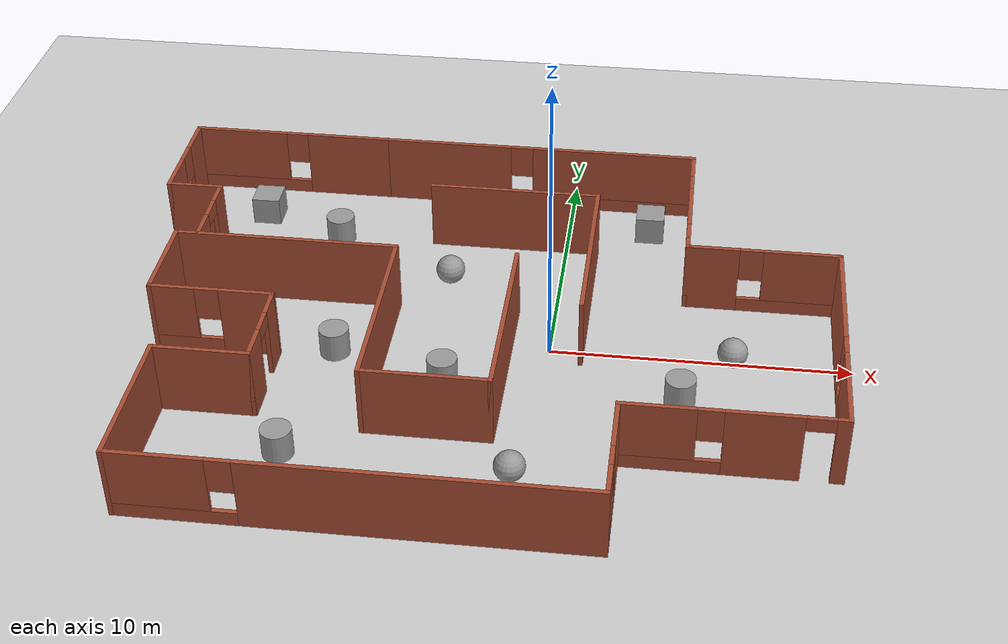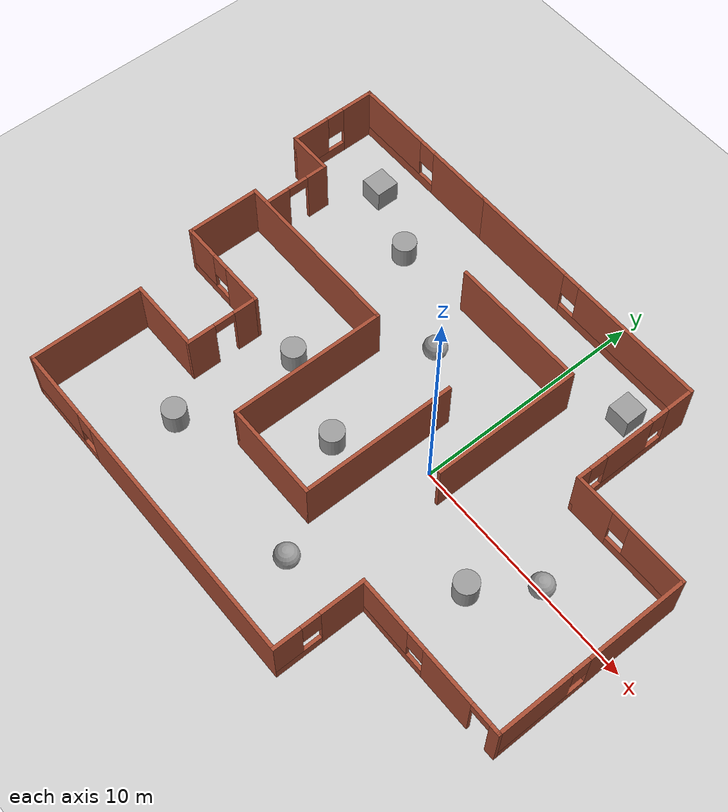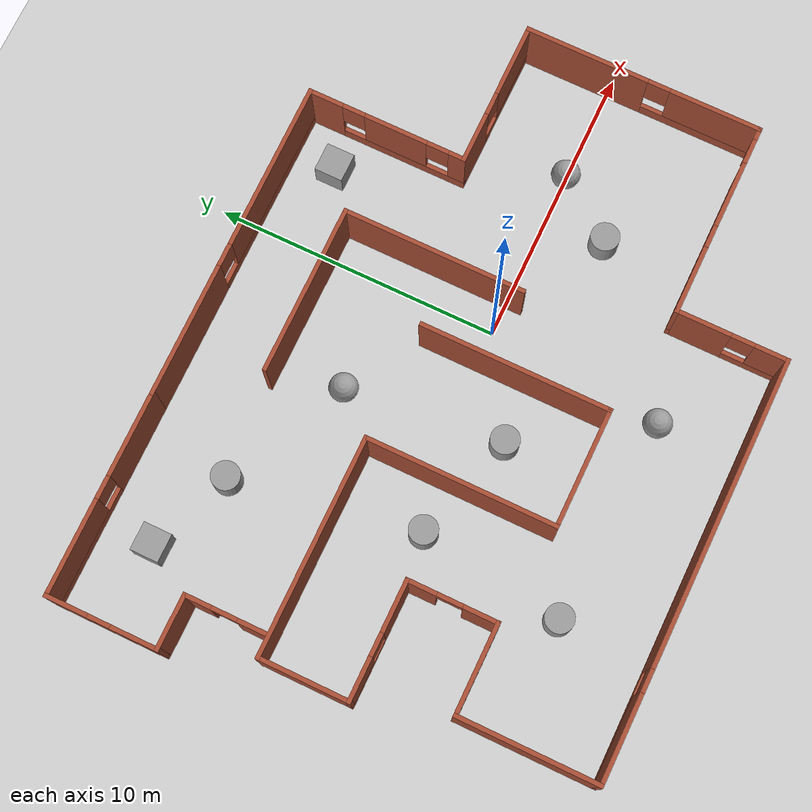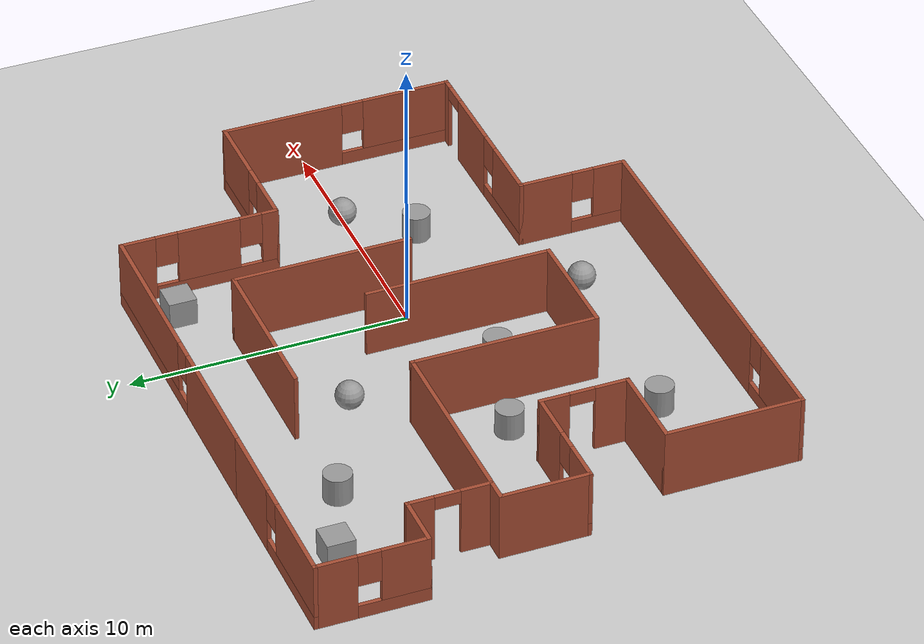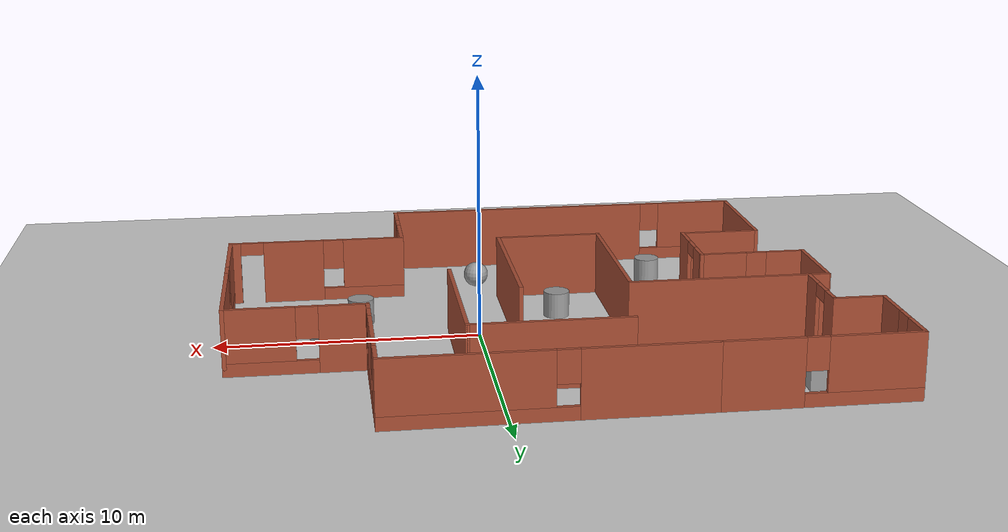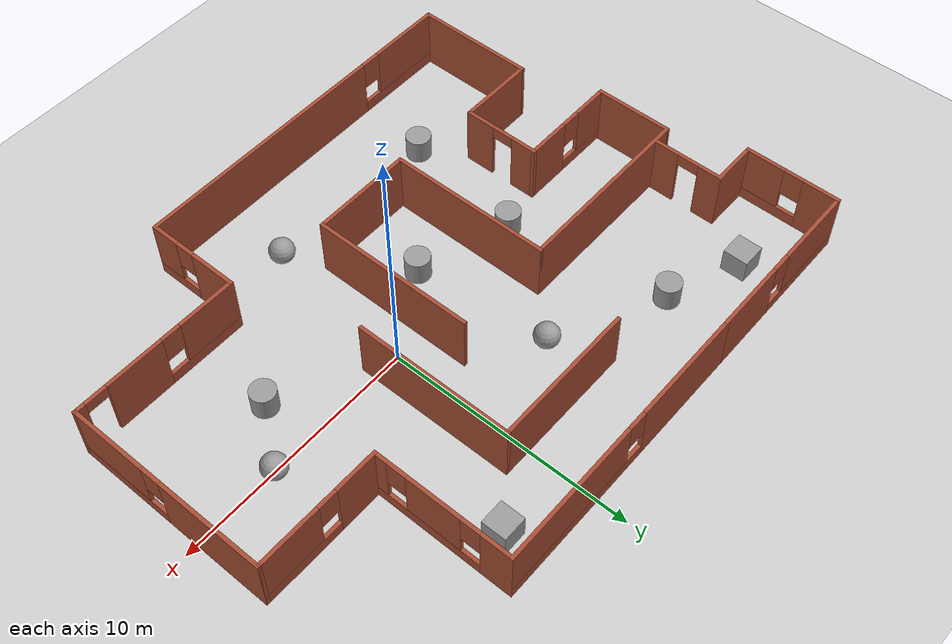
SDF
<sdf version="1.7">
 <world name="default">
  <light name="sun" type="directional">
   <pose>0 0 10 0 -0 0</pose>
   <diffuse>0.8 0.8 0.8 1</diffuse>
   <specular>0.2 0.2 0.2 1</specular>
   <attenuation>
    <range>1000</range>
    <constant>0.9</constant>
    <linear>0.01</linear>
    <quadratic>0.001</quadratic>
   </attenuation>
   <direction>-0.5 0.1 -0.9</direction>
   <spot><inner_angle>0</inner_angle><outer_angle>0</outer_angle><falloff>0</falloff></spot>
  </light>
  <model name="ground_plane">
   <static>1</static>
   <link name="link">
    <collision name="collision">
     <geometry><plane><normal>0 0 1</normal><size>100 100</size></plane></geometry>
     <surface>
      <contact><collide_bitmask>65535</collide_bitmask></contact>
      <friction><ode><mu>100</mu><mu2>50</mu2></ode></friction>
     </surface>
    </collision>
    <visual name="visual">
     <cast_shadows>0</cast_shadows>
     <geometry><plane><normal>0 0 1</normal><size>100 100</size></plane></geometry>
     <material>
      <script><uri>file://media/materials/scripts/gazebo.material</uri><name>Gazebo/Grey</name></script>
     </material>
    </visual>
   </link>
  </model>
  <gravity>0 0 -9.8</gravity>
  <magnetic_field>6e-06 2.3e-05 -4.2e-05</magnetic_field>
  <atmosphere type="adiabatic"/>
  <physics type="ode">
   <max_step_size>0.001</max_step_size>
   <real_time_factor>1</real_time_factor>
   <real_time_update_rate>1000</real_time_update_rate>
  </physics>
  <scene><ambient>0.4 0.4 0.4 1</ambient><background>0.7 0.7 0.7 1</background><shadows>1</shadows></scene>
  <audio><device>default</device></audio>
  <spherical_coordinates>
   <surface_model>EARTH_WGS84</surface_model>
   <latitude_deg>0</latitude_deg>
   <longitude_deg>0</longitude_deg>
   <elevation>0</elevation>
   <heading_deg>0</heading_deg>
  </spherical_coordinates>
  <model name="home">
   <pose>-2.33839 -0.196843 0 0 -0 0</pose>
   <link name="Wall_1">
    <pose>0.999999 8.9 0 0 -0 0</pose>
    <visual name="Wall_1_Visual_0">
     <pose>-3.37522 0 1.25 0 -0 0</pose>
     <geometry><box><size>4.74956 0.15 2.5</size></box></geometry>
     <material>
      <script><uri>file://media/materials/scripts/gazebo.material</uri><name>Gazebo/Bricks</name></script>
      <ambient>1 1 1 1</ambient>
     </material>
     <meta><layer>0</layer></meta>
    </visual>
    <collision name="Wall_1_Collision_0">
     <geometry><box><size>4.74956 0.15 2.5</size></box></geometry>
     <pose>-3.37522 0 1.25 0 -0 0</pose>
    </collision>
    <visual name="Wall_1_Visual_1">
     <pose>2.37478 0 0.25 0 -0 0</pose>
     <geometry><box><size>6.75044 0.15 0.5</size></box></geometry>
     <material>
      <script><uri>file://media/materials/scripts/gazebo.material</uri><name>Gazebo/Bricks</name></script>
      <ambient>1 1 1 1</ambient>
     </material>
     <meta><layer>0</layer></meta>
    </visual>
    <collision name="Wall_1_Collision_1">
     <geometry><box><size>6.75044 0.15 0.5</size></box></geometry>
     <pose>2.37478 0 0.25 0 -0 0</pose>
    </collision>
    <visual name="Wall_1_Visual_2">
     <pose>2.77478 0 1.5 0 -0 0</pose>
     <geometry><box><size>5.95043 0.15 2</size></box></geometry>
     <material>
      <script><uri>file://media/materials/scripts/gazebo.material</uri><name>Gazebo/Bricks</name></script>
      <ambient>1 1 1 1</ambient>
     </material>
     <meta><layer>0</layer></meta>
    </visual>
    <collision name="Wall_1_Collision_2">
     <geometry><box><size>5.95043 0.15 2</size></box></geometry>
     <pose>2.77478 0 1.5 0 -0 0</pose>
    </collision>
    <visual name="Wall_1_Visual_3">
     <pose>-0.600435 0 1.9 0 -0 0</pose>
     <geometry><box><size>0.8 0.15 1.2</size></box></geometry>
     <material>
      <script><uri>file://media/materials/scripts/gazebo.material</uri><name>Gazebo/Bricks</name></script>
      <ambient>1 1 1 1</ambient>
     </material>
     <meta><layer>0</layer></meta>
    </visual>
    <collision name="Wall_1_Collision_3">
     <geometry><box><size>0.8 0.15 1.2</size></box></geometry>
     <pose>-0.600435 0 1.9 0 -0 0</pose>
    </collision>
   </link>
   <link name="Wall_10">
    <pose>-6.575 -2.5 0 0 -0 1.5708</pose>
    <visual name="Wall_10_Visual_0">
     <pose>-0.996457 0 1.25 0 -0 0</pose>
     <geometry><box><size>1.25709 0.15 2.5</size></box></geometry>
     <material>
      <script><uri>file://media/materials/scripts/gazebo.material</uri><name>Gazebo/Bricks</name></script>
      <ambient>1 1 1 1</ambient>
     </material>
     <meta><layer>0</layer></meta>
    </visual>
    <collision name="Wall_10_Collision_0">
     <geometry><box><size>1.25709 0.15 2.5</size></box></geometry>
     <pose>-0.996457 0 1.25 0 -0 0</pose>
    </collision>
    <visual name="Wall_10_Visual_1">
     <pose>1.07854 0 1.25 0 -0 0</pose>
     <geometry><box><size>1.09291 0.15 2.5</size></box></geometry>
     <material>
      <script><uri>file://media/materials/scripts/gazebo.material</uri><name>Gazebo/Bricks</name></script>
      <ambient>1 1 1 1</ambient>
     </material>
     <meta><layer>0</layer></meta>
    </visual>
    <collision name="Wall_10_Collision_1">
     <geometry><box><size>1.09291 0.15 2.5</size></box></geometry>
     <pose>1.07854 0 1.25 0 -0 0</pose>
    </collision>
    <visual name="Wall_10_Visual_2">
     <pose>0.082087 0 2.25 0 -0 0</pose>
     <geometry><box><size>0.9 0.15 0.5</size></box></geometry>
     <material>
      <script><uri>file://media/materials/scripts/gazebo.material</uri><name>Gazebo/Bricks</name></script>
      <ambient>1 1 1 1</ambient>
     </material>
     <meta><layer>0</layer></meta>
    </visual>
    <collision name="Wall_10_Collision_2">
     <geometry><box><size>0.9 0.15 0.5</size></box></geometry>
     <pose>0.082087 0 2.25 0 -0 0</pose>
    </collision>
   </link>
   <link name="Wall_11">
    <pose>-8.625 -0.95 0 0 -0 3.14159</pose>
    <visual name="Wall_11_Visual_0">
     <pose>-1.19003 0 1.25 0 -0 0</pose>
     <geometry><box><size>1.86995 0.15 2.5</size></box></geometry>
     <material>
      <script><uri>file://media/materials/scripts/gazebo.material</uri><name>Gazebo/Bricks</name></script>
      <ambient>1 1 1 1</ambient>
     </material>
     <meta><layer>0</layer></meta>
    </visual>
    <collision name="Wall_11_Collision_0">
     <geometry><box><size>1.86995 0.15 2.5</size></box></geometry>
     <pose>-1.19003 0 1.25 0 -0 0</pose>
    </collision>
    <visual name="Wall_11_Visual_1">
     <pose>0.934974 0 0.25 0 -0 0</pose>
     <geometry><box><size>2.38005 0.15 0.5</size></box></geometry>
     <material>
      <script><uri>file://media/materials/scripts/gazebo.material</uri><name>Gazebo/Bricks</name></script>
      <ambient>1 1 1 1</ambient>
     </material>
     <meta><layer>0</layer></meta>
    </visual>
    <collision name="Wall_11_Collision_1">
     <geometry><box><size>2.38005 0.15 0.5</size></box></geometry>
     <pose>0.934974 0 0.25 0 -0 0</pose>
    </collision>
    <visual name="Wall_11_Visual_2">
     <pose>1.33497 0 1.5 0 -0 0</pose>
     <geometry><box><size>1.58005 0.15 2</size></box></geometry>
     <material>
      <script><uri>file://media/materials/scripts/gazebo.material</uri><name>Gazebo/Bricks</name></script>
      <ambient>1 1 1 1</ambient>
     </material>
     <meta><layer>0</layer></meta>
    </visual>
    <collision name="Wall_11_Collision_2">
     <geometry><box><size>1.58005 0.15 2</size></box></geometry>
     <pose>1.33497 0 1.5 0 -0 0</pose>
    </collision>
    <visual name="Wall_11_Visual_3">
     <pose>0.144947 0 1.9 0 -0 0</pose>
     <geometry><box><size>0.8 0.15 1.2</size></box></geometry>
     <material>
      <script><uri>file://media/materials/scripts/gazebo.material</uri><name>Gazebo/Bricks</name></script>
      <ambient>1 1 1 1</ambient>
     </material>
     <meta><layer>0</layer></meta>
    </visual>
    <collision name="Wall_11_Collision_3">
     <geometry><box><size>0.8 0.15 1.2</size></box></geometry>
     <pose>0.144947 0 1.9 0 -0 0</pose>
    </collision>
   </link>
   <link name="Wall_12">
    <collision name="Wall_12_Collision">
     <geometry><box><size>3.25 0.15 2.5</size></box></geometry>
     <pose>0 0 1.25 0 -0 0</pose>
    </collision>
    <visual name="Wall_12_Visual">
     <pose>0 0 1.25 0 -0 0</pose>
     <geometry><box><size>3.25 0.15 2.5</size></box></geometry>
     <material>
      <script><uri>file://media/materials/scripts/gazebo.material</uri><name>Gazebo/Bricks</name></script>
      <ambient>1 1 1 1</ambient>
     </material>
     <meta><layer>0</layer></meta>
    </visual>
    <pose>-10.675 0.6 0 0 -0 1.5708</pose>
   </link>
   <link name="Wall_13">
    <collision name="Wall_13_Collision">
     <geometry><box><size>7.75 0.15 2.5</size></box></geometry>
     <pose>0 0 1.25 0 -0 0</pose>
    </collision>
    <visual name="Wall_13_Visual">
     <pose>0 0 1.25 0 -0 0</pose>
     <geometry><box><size>7.75 0.15 2.5</size></box></geometry>
     <material>
      <script><uri>file://media/materials/scripts/gazebo.material</uri><name>Gazebo/Bricks</name></script>
      <ambient>1 1 1 1</ambient>
     </material>
     <meta><layer>0</layer></meta>
    </visual>
    <pose>-6.875 2.15 0 0 -0 0</pose>
   </link>
   <link name="Wall_14">
    <collision name="Wall_14_Collision">
     <geometry><box><size>6.75 0.15 2.5</size></box></geometry>
     <pose>0 0 1.25 0 -0 0</pose>
    </collision>
    <visual name="Wall_14_Visual">
     <pose>0 0 1.25 0 -0 0</pose>
     <geometry><box><size>6.75 0.15 2.5</size></box></geometry>
     <material>
      <script><uri>file://media/materials/scripts/gazebo.material</uri><name>Gazebo/Bricks</name></script>
      <ambient>1 1 1 1</ambient>
     </material>
     <meta><layer>0</layer></meta>
    </visual>
    <pose>-3.075 -1.15 0 0 -0 -1.5708</pose>
   </link>
   <link name="Wall_15">
    <collision name="Wall_15_Collision">
     <geometry><box><size>4.25 0.15 2.5</size></box></geometry>
     <pose>0 0 1.25 0 -0 0</pose>
    </collision>
    <visual name="Wall_15_Visual">
     <pose>0 0 1.25 0 -0 0</pose>
     <geometry><box><size>4.25 0.15 2.5</size></box></geometry>
     <material>
      <script><uri>file://media/materials/scripts/gazebo.material</uri><name>Gazebo/Bricks</name></script>
      <ambient>1 1 1 1</ambient>
     </material>
     <meta><layer>0</layer></meta>
    </visual>
    <pose>-1.025 -4.45 0 0 -0 0</pose>
   </link>
   <link name="Wall_16">
    <collision name="Wall_16_Collision">
     <geometry><box><size>6.75 0.15 2.5</size></box></geometry>
     <pose>0 0 1.25 0 -0 0</pose>
    </collision>
    <visual name="Wall_16_Visual">
     <pose>0 0 1.25 0 -0 0</pose>
     <geometry><box><size>6.75 0.15 2.5</size></box></geometry>
     <material>
      <script><uri>file://media/materials/scripts/gazebo.material</uri><name>Gazebo/Bricks</name></script>
      <ambient>1 1 1 1</ambient>
     </material>
     <meta><layer>0</layer></meta>
    </visual>
    <pose>1.025 -1.15 0 0 -0 1.5708</pose>
   </link>
   <link name="Wall_18">
    <pose>-8.225 8.9 0 0 -0 3.14159</pose>
    <visual name="Wall_18_Visual_0">
     <pose>-2.11012 0 1.25 0 -0 0</pose>
     <geometry><box><size>3.02975 0.15 2.5</size></box></geometry>
     <material>
      <script><uri>file://media/materials/scripts/gazebo.material</uri><name>Gazebo/Bricks</name></script>
      <ambient>1 1 1 1</ambient>
     </material>
     <meta><layer>0</layer></meta>
    </visual>
    <collision name="Wall_18_Collision_0">
     <geometry><box><size>3.02975 0.15 2.5</size></box></geometry>
     <pose>-2.11012 0 1.25 0 -0 0</pose>
    </collision>
    <visual name="Wall_18_Visual_1">
     <pose>1.51488 0 0.25 0 -0 0</pose>
     <geometry><box><size>4.22025 0.15 0.5</size></box></geometry>
     <material>
      <script><uri>file://media/materials/scripts/gazebo.material</uri><name>Gazebo/Bricks</name></script>
      <ambient>1 1 1 1</ambient>
     </material>
     <meta><layer>0</layer></meta>
    </visual>
    <collision name="Wall_18_Collision_1">
     <geometry><box><size>4.22025 0.15 0.5</size></box></geometry>
     <pose>1.51488 0 0.25 0 -0 0</pose>
    </collision>
    <visual name="Wall_18_Visual_2">
     <pose>1.91488 0 1.5 0 -0 0</pose>
     <geometry><box><size>3.42025 0.15 2</size></box></geometry>
     <material>
      <script><uri>file://media/materials/scripts/gazebo.material</uri><name>Gazebo/Bricks</name></script>
      <ambient>1 1 1 1</ambient>
     </material>
     <meta><layer>0</layer></meta>
    </visual>
    <collision name="Wall_18_Collision_2">
     <geometry><box><size>3.42025 0.15 2</size></box></geometry>
     <pose>1.91488 0 1.5 0 -0 0</pose>
    </collision>
    <visual name="Wall_18_Visual_3">
     <pose>-0.195246 0 1.9 0 -0 0</pose>
     <geometry><box><size>0.8 0.15 1.2</size></box></geometry>
     <material>
      <script><uri>file://media/materials/scripts/gazebo.material</uri><name>Gazebo/Bricks</name></script>
      <ambient>1 1 1 1</ambient>
     </material>
     <meta><layer>0</layer></meta>
    </visual>
    <collision name="Wall_18_Collision_3">
     <geometry><box><size>0.8 0.15 1.2</size></box></geometry>
     <pose>-0.195246 0 1.9 0 -0 0</pose>
    </collision>
   </link>
   <link name="Wall_19">
    <pose>-11.775 6.975 0 0 -0 -1.5708</pose>
    <visual name="Wall_19_Visual_0">
     <pose>-1.24753 0 1.25 0 -0 0</pose>
     <geometry><box><size>1.50494 0.15 2.5</size></box></geometry>
     <material>
      <script><uri>file://media/materials/scripts/gazebo.material</uri><name>Gazebo/Bricks</name></script>
      <ambient>1 1 1 1</ambient>
     </material>
     <meta><layer>0</layer></meta>
    </visual>
    <collision name="Wall_19_Collision_0">
     <geometry><box><size>1.50494 0.15 2.5</size></box></geometry>
     <pose>-1.24753 0 1.25 0 -0 0</pose>
    </collision>
    <visual name="Wall_19_Visual_1">
     <pose>0.752471 0 0.25 0 -0 0</pose>
     <geometry><box><size>2.49506 0.15 0.5</size></box></geometry>
     <material>
      <script><uri>file://media/materials/scripts/gazebo.material</uri><name>Gazebo/Bricks</name></script>
      <ambient>1 1 1 1</ambient>
     </material>
     <meta><layer>0</layer></meta>
    </visual>
    <collision name="Wall_19_Collision_1">
     <geometry><box><size>2.49506 0.15 0.5</size></box></geometry>
     <pose>0.752471 0 0.25 0 -0 0</pose>
    </collision>
    <visual name="Wall_19_Visual_2">
     <pose>1.15247 0 1.5 0 -0 0</pose>
     <geometry><box><size>1.69506 0.15 2</size></box></geometry>
     <material>
      <script><uri>file://media/materials/scripts/gazebo.material</uri><name>Gazebo/Bricks</name></script>
      <ambient>1 1 1 1</ambient>
     </material>
     <meta><layer>0</layer></meta>
    </visual>
    <collision name="Wall_19_Collision_2">
     <geometry><box><size>1.69506 0.15 2</size></box></geometry>
     <pose>1.15247 0 1.5 0 -0 0</pose>
    </collision>
    <visual name="Wall_19_Visual_3">
     <pose>-0.095057 0 1.9 0 -0 0</pose>
     <geometry><box><size>0.8 0.15 1.2</size></box></geometry>
     <material>
      <script><uri>file://media/materials/scripts/gazebo.material</uri><name>Gazebo/Bricks</name></script>
      <ambient>1 1 1 1</ambient>
     </material>
     <meta><layer>0</layer></meta>
    </visual>
    <collision name="Wall_19_Collision_3">
     <geometry><box><size>0.8 0.15 1.2</size></box></geometry>
     <pose>-0.095057 0 1.9 0 -0 0</pose>
    </collision>
   </link>
   <link name="Wall_2">
    <pose>6.675 6.1 0 0 -0 -1.5708</pose>
    <visual name="Wall_2_Visual_0">
     <pose>-2.23321 0 1.25 0 -0 0</pose>
     <geometry><box><size>1.28357 0.15 2.5</size></box></geometry>
     <material>
      <script><uri>file://media/materials/scripts/gazebo.material</uri><name>Gazebo/Bricks</name></script>
      <ambient>1 1 1 1</ambient>
     </material>
     <meta><layer>0</layer></meta>
    </visual>
    <collision name="Wall_2_Collision_0">
     <geometry><box><size>1.28357 0.15 2.5</size></box></geometry>
     <pose>-2.23321 0 1.25 0 -0 0</pose>
    </collision>
    <visual name="Wall_2_Visual_1">
     <pose>0.641787 0 0.25 0 -0 0</pose>
     <geometry><box><size>4.46643 0.15 0.5</size></box></geometry>
     <material>
      <script><uri>file://media/materials/scripts/gazebo.material</uri><name>Gazebo/Bricks</name></script>
      <ambient>1 1 1 1</ambient>
     </material>
     <meta><layer>0</layer></meta>
    </visual>
    <collision name="Wall_2_Collision_1">
     <geometry><box><size>4.46643 0.15 0.5</size></box></geometry>
     <pose>0.641787 0 0.25 0 -0 0</pose>
    </collision>
    <visual name="Wall_2_Visual_2">
     <pose>0.3344 0 1.5 0 -0 0</pose>
     <geometry><box><size>2.25165 0.15 2</size></box></geometry>
     <material>
      <script><uri>file://media/materials/scripts/gazebo.material</uri><name>Gazebo/Bricks</name></script>
      <ambient>1 1 1 1</ambient>
     </material>
     <meta><layer>0</layer></meta>
    </visual>
    <collision name="Wall_2_Collision_2">
     <geometry><box><size>2.25165 0.15 2</size></box></geometry>
     <pose>0.3344 0 1.5 0 -0 0</pose>
    </collision>
    <visual name="Wall_2_Visual_3">
     <pose>2.56761 0 1.5 0 -0 0</pose>
     <geometry><box><size>0.614775 0.15 2</size></box></geometry>
     <material>
      <script><uri>file://media/materials/scripts/gazebo.material</uri><name>Gazebo/Bricks</name></script>
      <ambient>1 1 1 1</ambient>
     </material>
     <meta><layer>0</layer></meta>
    </visual>
    <collision name="Wall_2_Collision_3">
     <geometry><box><size>0.614775 0.15 2</size></box></geometry>
     <pose>2.56761 0 1.5 0 -0 0</pose>
    </collision>
    <visual name="Wall_2_Visual_4">
     <pose>-1.19143 0 1.9 0 -0 0</pose>
     <geometry><box><size>0.8 0.15 1.2</size></box></geometry>
     <material>
      <script><uri>file://media/materials/scripts/gazebo.material</uri><name>Gazebo/Bricks</name></script>
      <ambient>1 1 1 1</ambient>
     </material>
     <meta><layer>0</layer></meta>
    </visual>
    <collision name="Wall_2_Collision_4">
     <geometry><box><size>0.8 0.15 1.2</size></box></geometry>
     <pose>-1.19143 0 1.9 0 -0 0</pose>
    </collision>
    <visual name="Wall_2_Visual_5">
     <pose>1.86023 0 1.9 0 -0 0</pose>
     <geometry><box><size>0.8 0.15 1.2</size></box></geometry>
     <material>
      <script><uri>file://media/materials/scripts/gazebo.material</uri><name>Gazebo/Bricks</name></script>
      <ambient>1 1 1 1</ambient>
     </material>
     <meta><layer>0</layer></meta>
    </visual>
    <collision name="Wall_2_Collision_5">
     <geometry><box><size>0.8 0.15 1.2</size></box></geometry>
     <pose>1.86023 0 1.9 0 -0 0</pose>
    </collision>
   </link>
   <link name="Wall_20">
    <collision name="Wall_20_Collision">
     <geometry><box><size>2 0.15 2.5</size></box></geometry>
     <pose>0 0 1.25 0 -0 0</pose>
    </collision>
    <visual name="Wall_20_Visual">
     <pose>0 0 1.25 0 -0 0</pose>
     <geometry><box><size>2 0.15 2.5</size></box></geometry>
     <material>
      <script><uri>file://media/materials/scripts/gazebo.material</uri><name>Gazebo/Bricks</name></script>
      <ambient>1 1 1 1</ambient>
     </material>
     <meta><layer>0</layer></meta>
    </visual>
    <pose>-10.85 5.05 0 0 -0 0</pose>
   </link>
   <link name="Wall_21">
    <pose>-9.925 3.625 0 0 -0 -1.5708</pose>
    <visual name="Wall_21_Visual_0">
     <pose>-1.00551 0 1.25 0 -0 0</pose>
     <geometry><box><size>0.988976 0.15 2.5</size></box></geometry>
     <material>
      <script><uri>file://media/materials/scripts/gazebo.material</uri><name>Gazebo/Bricks</name></script>
      <ambient>1 1 1 1</ambient>
     </material>
     <meta><layer>0</layer></meta>
    </visual>
    <collision name="Wall_21_Collision_0">
     <geometry><box><size>0.988976 0.15 2.5</size></box></geometry>
     <pose>-1.00551 0 1.25 0 -0 0</pose>
    </collision>
    <visual name="Wall_21_Visual_1">
     <pose>0.944488 0 1.25 0 -0 0</pose>
     <geometry><box><size>1.11102 0.15 2.5</size></box></geometry>
     <material>
      <script><uri>file://media/materials/scripts/gazebo.material</uri><name>Gazebo/Bricks</name></script>
      <ambient>1 1 1 1</ambient>
     </material>
     <meta><layer>0</layer></meta>
    </visual>
    <collision name="Wall_21_Collision_1">
     <geometry><box><size>1.11102 0.15 2.5</size></box></geometry>
     <pose>0.944488 0 1.25 0 -0 0</pose>
    </collision>
    <visual name="Wall_21_Visual_2">
     <pose>-0.061024 0 2.25 0 -0 0</pose>
     <geometry><box><size>0.9 0.15 0.5</size></box></geometry>
     <material>
      <script><uri>file://media/materials/scripts/gazebo.material</uri><name>Gazebo/Bricks</name></script>
      <ambient>1 1 1 1</ambient>
     </material>
     <meta><layer>0</layer></meta>
    </visual>
    <collision name="Wall_21_Collision_2">
     <geometry><box><size>0.9 0.15 0.5</size></box></geometry>
     <pose>-0.061024 0 2.25 0 -0 0</pose>
    </collision>
   </link>
   <link name="Wall_23">
    <collision name="Wall_23_Collision">
     <geometry><box><size>6 0.15 2.5</size></box></geometry>
     <pose>0 0 1.25 0 -0 0</pose>
    </collision>
    <visual name="Wall_23_Visual">
     <pose>0 0 1.25 0 -0 0</pose>
     <geometry><box><size>6 0.15 2.5</size></box></geometry>
     <material>
      <script><uri>file://media/materials/scripts/gazebo.material</uri><name>Gazebo/Bricks</name></script>
      <ambient>1 1 1 1</ambient>
     </material>
     <meta><layer>0</layer></meta>
    </visual>
    <pose>0.494282 6.02408 0 0 -0 0</pose>
   </link>
   <link name="Wall_24">
    <collision name="Wall_24_Collision">
     <geometry><box><size>6.5 0.15 2.5</size></box></geometry>
     <pose>0 0 1.25 0 -0 0</pose>
    </collision>
    <visual name="Wall_24_Visual">
     <pose>0 0 1.25 0 -0 0</pose>
     <geometry><box><size>6.5 0.15 2.5</size></box></geometry>
     <material>
      <script><uri>file://media/materials/scripts/gazebo.material</uri><name>Gazebo/Bricks</name></script>
      <ambient>1 1 1 1</ambient>
     </material>
     <meta><layer>0</layer></meta>
    </visual>
    <pose>3.41928 2.84908 0 0 -0 -1.5708</pose>
   </link>
   <link name="Wall_3">
    <pose>9.225 3.3 0 0 -0 0</pose>
    <visual name="Wall_3_Visual_0">
     <pose>-1.71089 0 1.25 0 -0 0</pose>
     <geometry><box><size>1.82823 0.15 2.5</size></box></geometry>
     <material>
      <script><uri>file://media/materials/scripts/gazebo.material</uri><name>Gazebo/Bricks</name></script>
      <ambient>1 1 1 1</ambient>
     </material>
     <meta><layer>0</layer></meta>
    </visual>
    <collision name="Wall_3_Collision_0">
     <geometry><box><size>1.82823 0.15 2.5</size></box></geometry>
     <pose>-1.71089 0 1.25 0 -0 0</pose>
    </collision>
    <visual name="Wall_3_Visual_1">
     <pose>0.914114 0 0.25 0 -0 0</pose>
     <geometry><box><size>3.42177 0.15 0.5</size></box></geometry>
     <material>
      <script><uri>file://media/materials/scripts/gazebo.material</uri><name>Gazebo/Bricks</name></script>
      <ambient>1 1 1 1</ambient>
     </material>
     <meta><layer>0</layer></meta>
    </visual>
    <collision name="Wall_3_Collision_1">
     <geometry><box><size>3.42177 0.15 0.5</size></box></geometry>
     <pose>0.914114 0 0.25 0 -0 0</pose>
    </collision>
    <visual name="Wall_3_Visual_2">
     <pose>1.31411 0 1.5 0 -0 0</pose>
     <geometry><box><size>2.62177 0.15 2</size></box></geometry>
     <material>
      <script><uri>file://media/materials/scripts/gazebo.material</uri><name>Gazebo/Bricks</name></script>
      <ambient>1 1 1 1</ambient>
     </material>
     <meta><layer>0</layer></meta>
    </visual>
    <collision name="Wall_3_Collision_2">
     <geometry><box><size>2.62177 0.15 2</size></box></geometry>
     <pose>1.31411 0 1.5 0 -0 0</pose>
    </collision>
    <visual name="Wall_3_Visual_3">
     <pose>-0.396771 0 1.9 0 -0 0</pose>
     <geometry><box><size>0.8 0.15 1.2</size></box></geometry>
     <material>
      <script><uri>file://media/materials/scripts/gazebo.material</uri><name>Gazebo/Bricks</name></script>
      <ambient>1 1 1 1</ambient>
     </material>
     <meta><layer>0</layer></meta>
    </visual>
    <collision name="Wall_3_Collision_3">
     <geometry><box><size>0.8 0.15 1.2</size></box></geometry>
     <pose>-0.396771 0 1.9 0 -0 0</pose>
    </collision>
   </link>
   <link name="Wall_4">
    <pose>11.775 -0.875 0 0 -0 -1.5708</pose>
    <visual name="Wall_4_Visual_0">
     <pose>-2.03901 0 1.25 0 -0 0</pose>
     <geometry><box><size>4.42198 0.15 2.5</size></box></geometry>
     <material>
      <script><uri>file://media/materials/scripts/gazebo.material</uri><name>Gazebo/Bricks</name></script>
      <ambient>1 1 1 1</ambient>
     </material>
     <meta><layer>0</layer></meta>
    </visual>
    <collision name="Wall_4_Collision_0">
     <geometry><box><size>4.42198 0.15 2.5</size></box></geometry>
     <pose>-2.03901 0 1.25 0 -0 0</pose>
    </collision>
    <visual name="Wall_4_Visual_1">
     <pose>2.21099 0 0.25 0 -0 0</pose>
     <geometry><box><size>4.07802 0.15 0.5</size></box></geometry>
     <material>
      <script><uri>file://media/materials/scripts/gazebo.material</uri><name>Gazebo/Bricks</name></script>
      <ambient>1 1 1 1</ambient>
     </material>
     <meta><layer>0</layer></meta>
    </visual>
    <collision name="Wall_4_Collision_1">
     <geometry><box><size>4.07802 0.15 0.5</size></box></geometry>
     <pose>2.21099 0 0.25 0 -0 0</pose>
    </collision>
    <visual name="Wall_4_Visual_2">
     <pose>2.61099 0 1.5 0 -0 0</pose>
     <geometry><box><size>3.27802 0.15 2</size></box></geometry>
     <material>
      <script><uri>file://media/materials/scripts/gazebo.material</uri><name>Gazebo/Bricks</name></script>
      <ambient>1 1 1 1</ambient>
     </material>
     <meta><layer>0</layer></meta>
    </visual>
    <collision name="Wall_4_Collision_2">
     <geometry><box><size>3.27802 0.15 2</size></box></geometry>
     <pose>2.61099 0 1.5 0 -0 0</pose>
    </collision>
    <visual name="Wall_4_Visual_3">
     <pose>0.571979 0 1.9 0 -0 0</pose>
     <geometry><box><size>0.8 0.15 1.2</size></box></geometry>
     <material>
      <script><uri>file://media/materials/scripts/gazebo.material</uri><name>Gazebo/Bricks</name></script>
      <ambient>1 1 1 1</ambient>
     </material>
     <meta><layer>0</layer></meta>
    </visual>
    <collision name="Wall_4_Collision_3">
     <geometry><box><size>0.8 0.15 1.2</size></box></geometry>
     <pose>0.571979 0 1.9 0 -0 0</pose>
    </collision>
   </link>
   <link name="Wall_5">
    <pose>8.35 -5.05 0 0 -0 3.14159</pose>
    <visual name="Wall_5_Visual_0">
     <pose>-3.26596 0 1.25 0 -0 0</pose>
     <geometry><box><size>0.468081 0.15 2.5</size></box></geometry>
     <material>
      <script><uri>file://media/materials/scripts/gazebo.material</uri><name>Gazebo/Bricks</name></script>
      <ambient>1 1 1 1</ambient>
     </material>
     <meta><layer>0</layer></meta>
    </visual>
    <collision name="Wall_5_Collision_0">
     <geometry><box><size>0.468081 0.15 2.5</size></box></geometry>
     <pose>-3.26596 0 1.25 0 -0 0</pose>
    </collision>
    <visual name="Wall_5_Visual_1">
     <pose>-0.938696 0 1.25 0 -0 0</pose>
     <geometry><box><size>2.38645 0.15 2.5</size></box></geometry>
     <material>
      <script><uri>file://media/materials/scripts/gazebo.material</uri><name>Gazebo/Bricks</name></script>
      <ambient>1 1 1 1</ambient>
     </material>
     <meta><layer>0</layer></meta>
    </visual>
    <collision name="Wall_5_Collision_1">
     <geometry><box><size>2.38645 0.15 2.5</size></box></geometry>
     <pose>-0.938696 0 1.25 0 -0 0</pose>
    </collision>
    <visual name="Wall_5_Visual_2">
     <pose>1.87726 0 0.25 0 -0 0</pose>
     <geometry><box><size>3.24547 0.15 0.5</size></box></geometry>
     <material>
      <script><uri>file://media/materials/scripts/gazebo.material</uri><name>Gazebo/Bricks</name></script>
      <ambient>1 1 1 1</ambient>
     </material>
     <meta><layer>0</layer></meta>
    </visual>
    <collision name="Wall_5_Collision_2">
     <geometry><box><size>3.24547 0.15 0.5</size></box></geometry>
     <pose>1.87726 0 0.25 0 -0 0</pose>
    </collision>
    <visual name="Wall_5_Visual_3">
     <pose>2.27726 0 1.5 0 -0 0</pose>
     <geometry><box><size>2.44547 0.15 2</size></box></geometry>
     <material>
      <script><uri>file://media/materials/scripts/gazebo.material</uri><name>Gazebo/Bricks</name></script>
      <ambient>1 1 1 1</ambient>
     </material>
     <meta><layer>0</layer></meta>
    </visual>
    <collision name="Wall_5_Collision_3">
     <geometry><box><size>2.44547 0.15 2</size></box></geometry>
     <pose>2.27726 0 1.5 0 -0 0</pose>
    </collision>
    <visual name="Wall_5_Visual_4">
     <pose>0.654528 0 1.9 0 -0 0</pose>
     <geometry><box><size>0.8 0.15 1.2</size></box></geometry>
     <material>
      <script><uri>file://media/materials/scripts/gazebo.material</uri><name>Gazebo/Bricks</name></script>
      <ambient>1 1 1 1</ambient>
     </material>
     <meta><layer>0</layer></meta>
    </visual>
    <collision name="Wall_5_Collision_4">
     <geometry><box><size>0.8 0.15 1.2</size></box></geometry>
     <pose>0.654528 0 1.9 0 -0 0</pose>
    </collision>
    <visual name="Wall_5_Visual_5">
     <pose>-2.58192 0 2.25 0 -0 0</pose>
     <geometry><box><size>0.9 0.15 0.5</size></box></geometry>
     <material>
      <script><uri>file://media/materials/scripts/gazebo.material</uri><name>Gazebo/Bricks</name></script>
      <ambient>1 1 1 1</ambient>
     </material>
     <meta><layer>0</layer></meta>
    </visual>
    <collision name="Wall_5_Collision_5">
     <geometry><box><size>0.9 0.15 0.5</size></box></geometry>
     <pose>-2.58192 0 2.25 0 -0 0</pose>
    </collision>
   </link>
   <link name="Wall_6">
    <pose>4.925 -6.975 0 0 -0 -1.5708</pose>
    <visual name="Wall_6_Visual_0">
     <pose>-1.01075 0 1.25 0 -0 0</pose>
     <geometry><box><size>1.97849 0.15 2.5</size></box></geometry>
     <material>
      <script><uri>file://media/materials/scripts/gazebo.material</uri><name>Gazebo/Bricks</name></script>
      <ambient>1 1 1 1</ambient>
     </material>
     <meta><layer>0</layer></meta>
    </visual>
    <collision name="Wall_6_Collision_0">
     <geometry><box><size>1.97849 0.15 2.5</size></box></geometry>
     <pose>-1.01075 0 1.25 0 -0 0</pose>
    </collision>
    <visual name="Wall_6_Visual_1">
     <pose>0.989247 0 0.25 0 -0 0</pose>
     <geometry><box><size>2.02151 0.15 0.5</size></box></geometry>
     <material>
      <script><uri>file://media/materials/scripts/gazebo.material</uri><name>Gazebo/Bricks</name></script>
      <ambient>1 1 1 1</ambient>
     </material>
     <meta><layer>0</layer></meta>
    </visual>
    <collision name="Wall_6_Collision_1">
     <geometry><box><size>2.02151 0.15 0.5</size></box></geometry>
     <pose>0.989247 0 0.25 0 -0 0</pose>
    </collision>
    <visual name="Wall_6_Visual_2">
     <pose>1.38925 0 1.5 0 -0 0</pose>
     <geometry><box><size>1.22151 0.15 2</size></box></geometry>
     <material>
      <script><uri>file://media/materials/scripts/gazebo.material</uri><name>Gazebo/Bricks</name></script>
      <ambient>1 1 1 1</ambient>
     </material>
     <meta><layer>0</layer></meta>
    </visual>
    <collision name="Wall_6_Collision_2">
     <geometry><box><size>1.22151 0.15 2</size></box></geometry>
     <pose>1.38925 0 1.5 0 -0 0</pose>
    </collision>
    <visual name="Wall_6_Visual_3">
     <pose>0.378494 0 1.9 0 -0 0</pose>
     <geometry><box><size>0.8 0.15 1.2</size></box></geometry>
     <material>
      <script><uri>file://media/materials/scripts/gazebo.material</uri><name>Gazebo/Bricks</name></script>
      <ambient>1 1 1 1</ambient>
     </material>
     <meta><layer>0</layer></meta>
    </visual>
    <collision name="Wall_6_Collision_3">
     <geometry><box><size>0.8 0.15 1.2</size></box></geometry>
     <pose>0.378494 0 1.9 0 -0 0</pose>
    </collision>
   </link>
   <link name="Wall_7">
    <pose>-2.375 -8.9 0 0 -0 3.14159</pose>
    <visual name="Wall_7_Visual_0">
     <pose>-1.96438 0 1.25 0 -0 0</pose>
     <geometry><box><size>10.8212 0.15 2.5</size></box></geometry>
     <material>
      <script><uri>file://media/materials/scripts/gazebo.material</uri><name>Gazebo/Bricks</name></script>
      <ambient>1 1 1 1</ambient>
     </material>
     <meta><layer>0</layer></meta>
    </visual>
    <collision name="Wall_7_Collision_0">
     <geometry><box><size>10.8212 0.15 2.5</size></box></geometry>
     <pose>-1.96438 0 1.25 0 -0 0</pose>
    </collision>
    <visual name="Wall_7_Visual_1">
     <pose>5.41062 0 0.25 0 -0 0</pose>
     <geometry><box><size>3.92875 0.15 0.5</size></box></geometry>
     <material>
      <script><uri>file://media/materials/scripts/gazebo.material</uri><name>Gazebo/Bricks</name></script>
      <ambient>1 1 1 1</ambient>
     </material>
     <meta><layer>0</layer></meta>
    </visual>
    <collision name="Wall_7_Collision_1">
     <geometry><box><size>3.92875 0.15 0.5</size></box></geometry>
     <pose>5.41062 0 0.25 0 -0 0</pose>
    </collision>
    <visual name="Wall_7_Visual_2">
     <pose>5.81062 0 1.5 0 -0 0</pose>
     <geometry><box><size>3.12875 0.15 2</size></box></geometry>
     <material>
      <script><uri>file://media/materials/scripts/gazebo.material</uri><name>Gazebo/Bricks</name></script>
      <ambient>1 1 1 1</ambient>
     </material>
     <meta><layer>0</layer></meta>
    </visual>
    <collision name="Wall_7_Collision_2">
     <geometry><box><size>3.12875 0.15 2</size></box></geometry>
     <pose>5.81062 0 1.5 0 -0 0</pose>
    </collision>
    <visual name="Wall_7_Visual_3">
     <pose>3.84625 0 1.9 0 -0 0</pose>
     <geometry><box><size>0.8 0.15 1.2</size></box></geometry>
     <material>
      <script><uri>file://media/materials/scripts/gazebo.material</uri><name>Gazebo/Bricks</name></script>
      <ambient>1 1 1 1</ambient>
     </material>
     <meta><layer>0</layer></meta>
    </visual>
    <collision name="Wall_7_Collision_3">
     <geometry><box><size>0.8 0.15 1.2</size></box></geometry>
     <pose>3.84625 0 1.9 0 -0 0</pose>
    </collision>
   </link>
   <link name="Wall_8">
    <collision name="Wall_8_Collision">
     <geometry><box><size>5 0.15 2.5</size></box></geometry>
     <pose>0 0 1.25 0 -0 0</pose>
    </collision>
    <visual name="Wall_8_Visual">
     <pose>0 0 1.25 0 -0 0</pose>
     <geometry><box><size>5 0.15 2.5</size></box></geometry>
     <material>
      <script><uri>file://media/materials/scripts/gazebo.material</uri><name>Gazebo/Bricks</name></script>
      <ambient>1 1 1 1</ambient>
     </material>
     <meta><layer>0</layer></meta>
    </visual>
    <pose>-9.675 -6.475 0 0 -0 1.5708</pose>
   </link>
   <link name="Wall_9">
    <collision name="Wall_9_Collision">
     <geometry><box><size>3.25 0.15 2.5</size></box></geometry>
     <pose>0 0 1.25 0 -0 0</pose>
    </collision>
    <visual name="Wall_9_Visual">
     <pose>0 0 1.25 0 -0 0</pose>
     <geometry><box><size>3.25 0.15 2.5</size></box></geometry>
     <material>
      <script><uri>file://media/materials/scripts/gazebo.material</uri><name>Gazebo/Bricks</name></script>
      <ambient>1 1 1 1</ambient>
     </material>
     <meta><layer>0</layer></meta>
    </visual>
    <pose>-8.125 -4.05 0 0 -0 0</pose>
   </link>
   <static>1</static>
  </model>
  <model name="unit_sphere">
   <pose>-3.85785 3.58907 0.5 0 -0 0</pose>
   <link name="link">
    <inertial>
     <mass>1</mass>
     <inertia><ixx>0.1</ixx><ixy>0</ixy><ixz>0</ixz><iyy>0.1</iyy><iyz>0</iyz><izz>0.1</izz></inertia>
    </inertial>
    <collision name="collision"><geometry><sphere><radius>0.5</radius></sphere></geometry></collision>
    <visual name="visual">
     <geometry><sphere><radius>0.5</radius></sphere></geometry>
     <material>
      <script><name>Gazebo/Grey</name><uri>file://media/materials/scripts/gazebo.material</uri></script>
     </material>
    </visual>
   </link>
  </model>
  <model name="unit_cylinder">
   <pose>-8.20329 5.67907 0.499998 3e-06 -4e-06 0</pose>
   <link name="link">
    <inertial>
     <mass>1</mass>
     <inertia><ixx>0.145833</ixx><ixy>0</ixy><ixz>0</ixz><iyy>0.145833</iyy><iyz>0</iyz><izz>0.125</izz></inertia>
    </inertial>
    <collision name="collision">
     <geometry><cylinder><radius>0.5</radius><length>1</length></cylinder></geometry>
    </collision>
    <visual name="visual">
     <geometry><cylinder><radius>0.5</radius><length>1</length></cylinder></geometry>
     <material>
      <script><name>Gazebo/Grey</name><uri>file://media/materials/scripts/gazebo.material</uri></script>
     </material>
    </visual>
   </link>
  </model>
  <model name="unit_box">
   <pose>-11.1447 6.85443 0.499995 -1e-05 -0 -0</pose>
   <link name="link">
    <inertial>
     <mass>1</mass>
     <inertia>
      <ixx>0.166667</ixx>
      <ixy>0</ixy>
      <ixz>0</ixz>
      <iyy>0.166667</iyy>
      <iyz>0</iyz>
      <izz>0.166667</izz>
     </inertia>
    </inertial>
    <collision name="collision"><geometry><box><size>1 1 1</size></box></geometry></collision>
    <visual name="visual">
     <geometry><box><size>1 1 1</size></box></geometry>
     <material>
      <script><name>Gazebo/Grey</name><uri>file://media/materials/scripts/gazebo.material</uri></script>
     </material>
    </visual>
   </link>
  </model>
  <model name="unit_cylinder_0">
   <pose>4.40587 -2.08879 0.499992 -3e-06 4e-06 0</pose>
   <link name="link">
    <inertial>
     <mass>1</mass>
     <inertia><ixx>0.145833</ixx><ixy>0</ixy><ixz>0</ixz><iyy>0.145833</iyy><iyz>0</iyz><izz>0.125</izz></inertia>
    </inertial>
    <collision name="collision">
     <geometry><cylinder><radius>0.5</radius><length>1</length></cylinder></geometry>
    </collision>
    <visual name="visual">
     <geometry><cylinder><radius>0.5</radius><length>1</length></cylinder></geometry>
     <material>
      <script><name>Gazebo/Grey</name><uri>file://media/materials/scripts/gazebo.material</uri></script>
     </material>
    </visual>
   </link>
  </model>
  <model name="unit_sphere_0">
   <pose>6.03564 0.039482 0.5 0 -0 0</pose>
   <link name="link">
    <inertial>
     <mass>1</mass>
     <inertia><ixx>0.1</ixx><ixy>0</ixy><ixz>0</ixz><iyy>0.1</iyy><iyz>0</iyz><izz>0.1</izz></inertia>
    </inertial>
    <collision name="collision"><geometry><sphere><radius>0.5</radius></sphere></geometry></collision>
    <visual name="visual">
     <geometry><sphere><radius>0.5</radius></sphere></geometry>
     <material>
      <script><name>Gazebo/Grey</name><uri>file://media/materials/scripts/gazebo.material</uri></script>
     </material>
    </visual>
   </link>
  </model>
  <model name="unit_box_0">
   <pose>2.9211 7.20323 0.499995 0 1e-05 0</pose>
   <link name="link">
    <inertial>
     <mass>1</mass>
     <inertia>
      <ixx>0.166667</ixx>
      <ixy>0</ixy>
      <ixz>0</ixz>
      <iyy>0.166667</iyy>
      <iyz>0</iyz>
      <izz>0.166667</izz>
     </inertia>
    </inertial>
    <collision name="collision"><geometry><box><size>1 1 1</size></box></geometry></collision>
    <visual name="visual">
     <geometry><box><size>1 1 1</size></box></geometry>
     <material>
      <script><name>Gazebo/Grey</name><uri>file://media/materials/scripts/gazebo.material</uri></script>
     </material>
    </visual>
   </link>
  </model>
  <model name="unit_cylinder_1">
   <pose>-3.27953 -1.96241 0.499993 -3e-06 -4e-06 -0</pose>
   <link name="link">
    <inertial>
     <mass>1</mass>
     <inertia><ixx>0.145833</ixx><ixy>0</ixy><ixz>0</ixz><iyy>0.145833</iyy><iyz>0</iyz><izz>0.125</izz></inertia>
    </inertial>
    <collision name="collision">
     <geometry><cylinder><radius>0.5</radius><length>1</length></cylinder></geometry>
    </collision>
    <visual name="visual">
     <geometry><cylinder><radius>0.5</radius><length>1</length></cylinder></geometry>
     <material>
      <script><name>Gazebo/Grey</name><uri>file://media/materials/scripts/gazebo.material</uri></script>
     </material>
    </visual>
   </link>
  </model>
  <model name="unit_cylinder_2">
   <pose>-7.77622 -5.93149 0.499997 3e-06 4e-06 -0</pose>
   <link name="link">
    <inertial>
     <mass>1</mass>
     <inertia><ixx>0.145833</ixx><ixy>0</ixy><ixz>0</ixz><iyy>0.145833</iyy><iyz>0</iyz><izz>0.125</izz></inertia>
    </inertial>
    <collision name="collision">
     <geometry><cylinder><radius>0.5</radius><length>1</length></cylinder></geometry>
    </collision>
    <visual name="visual">
     <geometry><cylinder><radius>0.5</radius><length>1</length></cylinder></geometry>
     <material>
      <script><name>Gazebo/Grey</name><uri>file://media/materials/scripts/gazebo.material</uri></script>
     </material>
    </visual>
   </link>
  </model>
  <model name="unit_cylinder_3">
   <pose>-7.06738 -0.83299 0.499993 -3e-06 -4e-06 -0</pose>
   <link name="link">
    <inertial>
     <mass>1</mass>
     <inertia><ixx>0.145833</ixx><ixy>0</ixy><ixz>0</ixz><iyy>0.145833</iyy><iyz>0</iyz><izz>0.125</izz></inertia>
    </inertial>
    <collision name="collision">
     <geometry><cylinder><radius>0.5</radius><length>1</length></cylinder></geometry>
    </collision>
    <visual name="visual">
     <geometry><cylinder><radius>0.5</radius><length>1</length></cylinder></geometry>
     <material>
      <script><name>Gazebo/Grey</name><uri>file://media/materials/scripts/gazebo.material</uri></script>
     </material>
    </visual>
   </link>
  </model>
  <model name="unit_sphere_1">
   <pose>-0.552316 -6.21706 0.5 0 -0 0</pose>
   <link name="link">
    <inertial>
     <mass>1</mass>
     <inertia><ixx>0.1</ixx><ixy>0</ixy><ixz>0</ixz><iyy>0.1</iyy><iyz>0</iyz><izz>0.1</izz></inertia>
    </inertial>
    <collision name="collision"><geometry><sphere><radius>0.5</radius></sphere></geometry></collision>
    <visual name="visual">
     <geometry><sphere><radius>0.5</radius></sphere></geometry>
     <material>
      <script><name>Gazebo/Grey</name><uri>file://media/materials/scripts/gazebo.material</uri></script>
     </material>
    </visual>
   </link>
  </model>
 </world>
</sdf>
